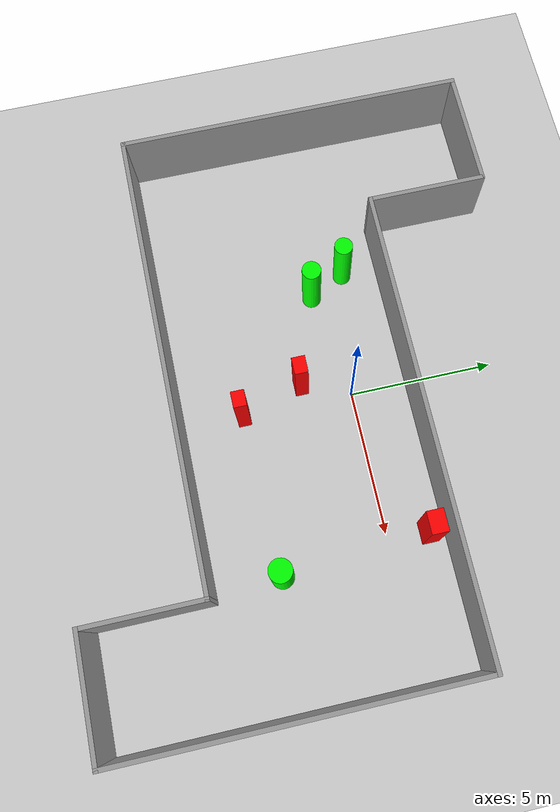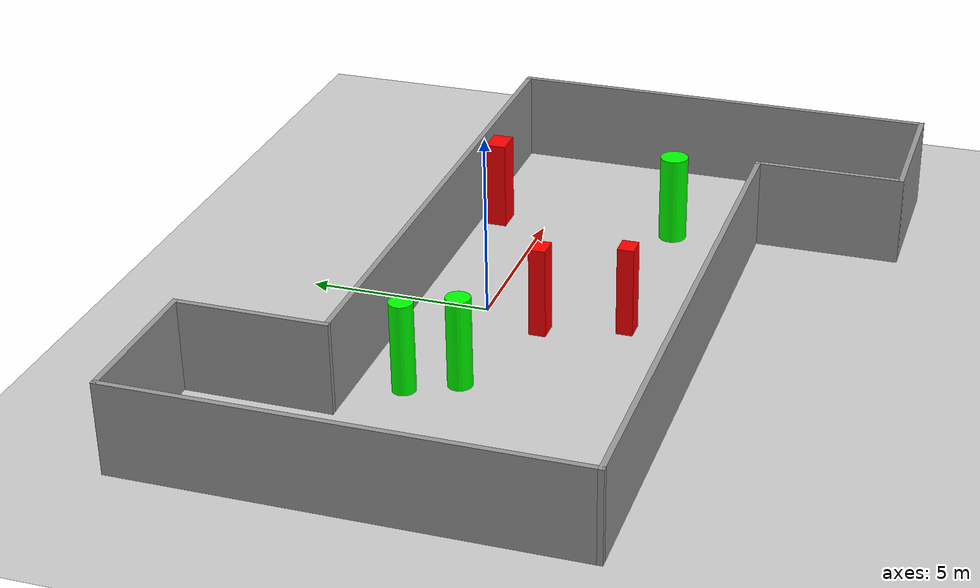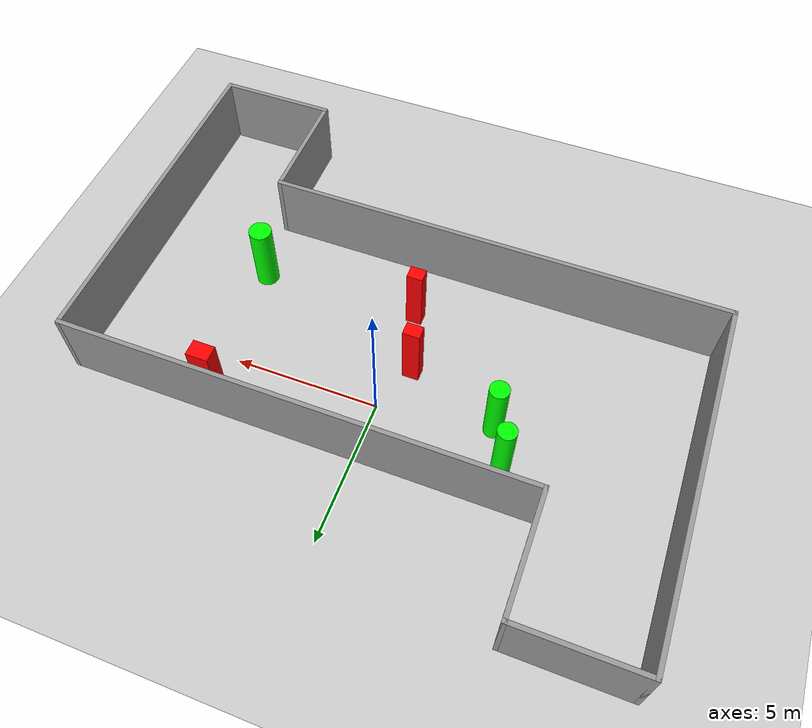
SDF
<sdf version="1.7">
 <world name="default">
  <light name="sun" type="directional">
   <pose>0 0 10 0 -0 0</pose>
   <diffuse>0.8 0.8 0.8 1</diffuse>
   <specular>0.2 0.2 0.2 1</specular>
   <attenuation>
    <range>1000</range>
    <constant>0.9</constant>
    <linear>0.01</linear>
    <quadratic>0.001</quadratic>
   </attenuation>
   <direction>-0.5 0.1 -0.9</direction>
   <spot><inner_angle>0</inner_angle><outer_angle>0</outer_angle><falloff>0</falloff></spot>
  </light>
  <model name="ground_plane">
   <static>1</static>
   <link name="link">
    <collision name="collision">
     <geometry><plane><normal>0 0 1</normal><size>100 100</size></plane></geometry>
     <surface>
      <contact><collide_bitmask>65535</collide_bitmask></contact>
      <friction><ode><mu>100</mu><mu2>50</mu2></ode></friction>
     </surface>
    </collision>
    <visual name="visual">
     <cast_shadows>0</cast_shadows>
     <geometry><plane><normal>0 0 1</normal><size>100 100</size></plane></geometry>
     <material>
      <script><uri>file://media/materials/scripts/gazebo.material</uri><name>Gazebo/Grey</name></script>
     </material>
    </visual>
   </link>
  </model>
  <gravity>0 0 -9.8</gravity>
  <magnetic_field>6e-06 2.3e-05 -4.2e-05</magnetic_field>
  <atmosphere type="adiabatic"/>
  <physics type="ode">
   <max_step_size>0.001</max_step_size>
   <real_time_factor>1</real_time_factor>
   <real_time_update_rate>1000</real_time_update_rate>
  </physics>
  <scene><ambient>0.4 0.4 0.4 1</ambient><background>0.7 0.7 0.7 1</background><shadows>1</shadows></scene>
  <spherical_coordinates>
   <surface_model>EARTH_WGS84</surface_model>
   <latitude_deg>0</latitude_deg>
   <longitude_deg>0</longitude_deg>
   <elevation>0</elevation>
   <heading_deg>0</heading_deg>
  </spherical_coordinates>
  <model name="my_base_walls">
   <link name="Wall_13">
    <collision name="Wall_13_Collision">
     <geometry><box><size>12.15 0.15 2.5</size></box></geometry>
     <pose>0 0 1.25 0 -0 0</pose>
    </collision>
    <visual name="Wall_13_Visual">
     <pose>0 0 1.25 0 -0 0</pose>
     <geometry><box><size>12.15 0.15 2.5</size></box></geometry>
     <material>
      <script><uri>file://media/materials/scripts/gazebo.material</uri><name>Gazebo/Grey</name></script>
      <ambient>1 1 1 1</ambient>
     </material>
     <meta><layer>0</layer></meta>
    </visual>
    <pose>10 -2 0 0 -0 1.5708</pose>
   </link>
   <link name="Wall_15">
    <collision name="Wall_15_Collision">
     <geometry><box><size>16.15 0.15 2.5</size></box></geometry>
     <pose>0 0 1.25 0 -0 0</pose>
    </collision>
    <visual name="Wall_15_Visual">
     <pose>0 0 1.25 0 -0 0</pose>
     <geometry><box><size>16.15 0.15 2.5</size></box></geometry>
     <material>
      <script><uri>file://media/materials/scripts/gazebo.material</uri><name>Gazebo/Grey</name></script>
      <ambient>1 1 1 1</ambient>
     </material>
     <meta><layer>0</layer></meta>
    </visual>
    <pose>2 4 0 0 -0 3.14159</pose>
   </link>
   <link name="Wall_17">
    <collision name="Wall_17_Collision">
     <geometry><box><size>4.15 0.15 2.5</size></box></geometry>
     <pose>0 0 1.25 0 -0 0</pose>
    </collision>
    <visual name="Wall_17_Visual">
     <pose>0 0 1.25 0 -0 0</pose>
     <geometry><box><size>4.15 0.15 2.5</size></box></geometry>
     <material>
      <script><uri>file://media/materials/scripts/gazebo.material</uri><name>Gazebo/Grey</name></script>
      <ambient>1 1 1 1</ambient>
     </material>
     <meta><layer>0</layer></meta>
    </visual>
    <pose>6 -6 0 0 -0 -1.5708</pose>
   </link>
   <link name="Wall_19">
    <collision name="Wall_19_Collision">
     <geometry><box><size>12.15 0.15 2.5</size></box></geometry>
     <pose>0 0 1.25 0 -0 0</pose>
    </collision>
    <visual name="Wall_19_Visual">
     <pose>0 0 1.25 0 -0 0</pose>
     <geometry><box><size>12.15 0.15 2.5</size></box></geometry>
     <material>
      <script><uri>file://media/materials/scripts/gazebo.material</uri><name>Gazebo/Grey</name></script>
      <ambient>1 1 1 1</ambient>
     </material>
     <meta><layer>0</layer></meta>
    </visual>
    <pose>-10 2 0 0 -0 1.5708</pose>
   </link>
   <link name="Wall_21">
    <collision name="Wall_21_Collision">
     <geometry><box><size>4.15 0.15 2.5</size></box></geometry>
     <pose>0 0 1.25 0 -0 0</pose>
    </collision>
    <visual name="Wall_21_Visual">
     <pose>0 0 1.25 0 -0 0</pose>
     <geometry><box><size>4.15 0.15 2.5</size></box></geometry>
     <material>
      <script><uri>file://media/materials/scripts/gazebo.material</uri><name>Gazebo/Grey</name></script>
      <ambient>1 1 1 1</ambient>
     </material>
     <meta><layer>0</layer></meta>
    </visual>
    <pose>-8 8 0 0 -0 0</pose>
   </link>
   <link name="Wall_23">
    <collision name="Wall_23_Collision">
     <geometry><box><size>4.15 0.15 2.5</size></box></geometry>
     <pose>0 0 1.25 0 -0 0</pose>
    </collision>
    <visual name="Wall_23_Visual">
     <pose>0 0 1.25 0 -0 0</pose>
     <geometry><box><size>4.15 0.15 2.5</size></box></geometry>
     <material>
      <script><uri>file://media/materials/scripts/gazebo.material</uri><name>Gazebo/Grey</name></script>
      <ambient>1 1 1 1</ambient>
     </material>
     <meta><layer>0</layer></meta>
    </visual>
    <pose>-6 6 0 0 -0 -1.5708</pose>
   </link>
   <link name="Wall_25">
    <collision name="Wall_25_Collision">
     <geometry><box><size>4.15 0.15 2.5</size></box></geometry>
     <pose>0 0 1.25 0 -0 0</pose>
    </collision>
    <visual name="Wall_25_Visual">
     <pose>0 0 1.25 0 -0 0</pose>
     <geometry><box><size>4.15 0.15 2.5</size></box></geometry>
     <material>
      <script><uri>file://media/materials/scripts/gazebo.material</uri><name>Gazebo/Grey</name></script>
      <ambient>1 1 1 1</ambient>
     </material>
     <meta><layer>0</layer></meta>
    </visual>
    <pose>8 -8 0 0 -0 0</pose>
   </link>
   <link name="Wall_9">
    <collision name="Wall_9_Collision">
     <geometry><box><size>16.15 0.15 2.5</size></box></geometry>
     <pose>0 0 1.25 0 -0 0</pose>
    </collision>
    <visual name="Wall_9_Visual">
     <pose>0 0 1.25 0 -0 0</pose>
     <geometry><box><size>16.15 0.15 2.5</size></box></geometry>
     <material>
      <script><uri>file://media/materials/scripts/gazebo.material</uri><name>Gazebo/Grey</name></script>
      <ambient>1 1 1 1</ambient>
     </material>
     <meta><layer>0</layer></meta>
    </visual>
    <pose>-2 -4 0 0 -0 3.14159</pose>
   </link>
   <static>1</static>
   <pose>-0 -2 0 0 -0 0</pose>
  </model>
  <model name="cylinder1">
   <static>1</static>
   <link name="link">
    <inertial>
     <mass>1</mass>
     <inertia><ixx>0.5</ixx><ixy>0</ixy><ixz>0</ixz><iyy>0.5</iyy><iyz>0</iyz><izz>1</izz></inertia>
    </inertial>
    <collision name="collision">
     <geometry><cylinder><radius>0.32786904166072683</radius><length>2.5</length></cylinder></geometry>
    </collision>
    <visual name="visual">
     <geometry><cylinder><radius>0.32786904166072683</radius><length>2.5</length></cylinder></geometry>
     <material>
      <ambient>0 1 0 1</ambient>
      <diffuse>0 1 0 1</diffuse>
      <specular>0.1 0.1 0.1 1</specular>
      <emissive>0 0 0 0</emissive>
     </material>
    </visual>
   </link>
   <pose>-3.834034056658155 -0.5766432932845289 1.25 0 0 0</pose>
  </model>
  <model name="cylinder2">
   <static>1</static>
   <link name="link">
    <inertial>
     <mass>1</mass>
     <inertia><ixx>0.5</ixx><ixy>0</ixy><ixz>0</ixz><iyy>0.5</iyy><iyz>0</iyz><izz>1</izz></inertia>
    </inertial>
    <collision name="collision">
     <geometry><cylinder><radius>0.39141327931275316</radius><length>2.5</length></cylinder></geometry>
    </collision>
    <visual name="visual">
     <geometry><cylinder><radius>0.39141327931275316</radius><length>2.5</length></cylinder></geometry>
     <material>
      <ambient>0 1 0 1</ambient>
      <diffuse>0 1 0 1</diffuse>
      <specular>0.1 0.1 0.1 1</specular>
      <emissive>0 0 0 0</emissive>
     </material>
    </visual>
   </link>
   <pose>5.658743109129123 -3.6706013438691256 1.25 0 0 0</pose>
  </model>
  <model name="cylinder3">
   <static>1</static>
   <link name="link">
    <inertial>
     <mass>1</mass>
     <inertia><ixx>0.5</ixx><ixy>0</ixy><ixz>0</ixz><iyy>0.5</iyy><iyz>0</iyz><izz>1</izz></inertia>
    </inertial>
    <collision name="collision">
     <geometry><cylinder><radius>0.31360663373940834</radius><length>2.5</length></cylinder></geometry>
    </collision>
    <visual name="visual">
     <geometry><cylinder><radius>0.31360663373940834</radius><length>2.5</length></cylinder></geometry>
     <material>
      <ambient>0 1 0 1</ambient>
      <diffuse>0 1 0 1</diffuse>
      <specular>0.1 0.1 0.1 1</specular>
      <emissive>0 0 0 0</emissive>
     </material>
    </visual>
   </link>
   <pose>-4.465100950139439 0.6852986990556671 1.25 0 0 0</pose>
  </model>
  <model name="box1">
   <static>1</static>
   <link name="link">
    <inertial>
     <mass>1</mass>
     <inertia><ixx>0.083</ixx><ixy>0</ixy><ixz>0</ixz><iyy>0.083</iyy><iyz>0</iyz><izz>0.083</izz></inertia>
    </inertial>
    <collision name="collision">
     <geometry><box><size>0.5496965930551523 0.44943522027967664 2.5</size></box></geometry>
    </collision>
    <visual name="visual">
     <geometry><box><size>0.5496965930551523 0.44943522027967664 2.5</size></box></geometry>
     <material>
      <ambient>1 0 0 1</ambient>
      <diffuse>1 0 0 1</diffuse>
      <specular>0.1 0.1 0.1 1</specular>
      <emissive>0 0 0 0</emissive>
     </material>
    </visual>
    <sensor name="my_contact" type="contact">
     <contact><collision>box_collision</collision><topic>__default_topic__</topic></contact>
    </sensor>
   </link>
   <pose>0.03934007204762935 -3.8488068520410925 1.25 0 0 0</pose>
  </model>
  <model name="box2">
   <static>1</static>
   <link name="link">
    <inertial>
     <mass>1</mass>
     <inertia><ixx>0.083</ixx><ixy>0</ixy><ixz>0</ixz><iyy>0.083</iyy><iyz>0</iyz><izz>0.083</izz></inertia>
    </inertial>
    <collision name="collision">
     <geometry><box><size>0.752989406676611 0.5643725627550755 2.5</size></box></geometry>
    </collision>
    <visual name="visual">
     <geometry><box><size>0.752989406676611 0.5643725627550755 2.5</size></box></geometry>
     <material>
      <ambient>1 0 0 1</ambient>
      <diffuse>1 0 0 1</diffuse>
      <specular>0.1 0.1 0.1 1</specular>
      <emissive>0 0 0 0</emissive>
     </material>
    </visual>
    <sensor name="my_contact" type="contact">
     <contact><collision>box_collision</collision><topic>__default_topic__</topic></contact>
    </sensor>
   </link>
   <pose>5.254528127916526 1.3902367142902294 1.25 0 0 0</pose>
  </model>
  <model name="box3">
   <static>1</static>
   <link name="link">
    <inertial>
     <mass>1</mass>
     <inertia><ixx>0.083</ixx><ixy>0</ixy><ixz>0</ixz><iyy>0.083</iyy><iyz>0</iyz><izz>0.083</izz></inertia>
    </inertial>
    <collision name="collision">
     <geometry><box><size>0.5830460078954691 0.45502697406245485 2.5</size></box></geometry>
    </collision>
    <visual name="visual">
     <geometry><box><size>0.5830460078954691 0.45502697406245485 2.5</size></box></geometry>
     <material>
      <ambient>1 0 0 1</ambient>
      <diffuse>1 0 0 1</diffuse>
      <specular>0.1 0.1 0.1 1</specular>
      <emissive>0 0 0 0</emissive>
     </material>
    </visual>
    <sensor name="my_contact" type="contact">
     <contact><collision>box_collision</collision><topic>__default_topic__</topic></contact>
    </sensor>
   </link>
   <pose>-0.6463630297475893 -1.681465911573282 1.25 0 0 0</pose>
  </model>
 </world>
</sdf>
